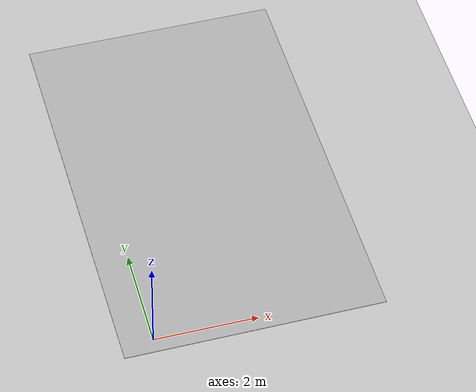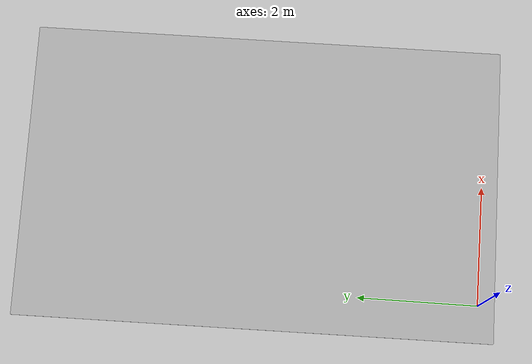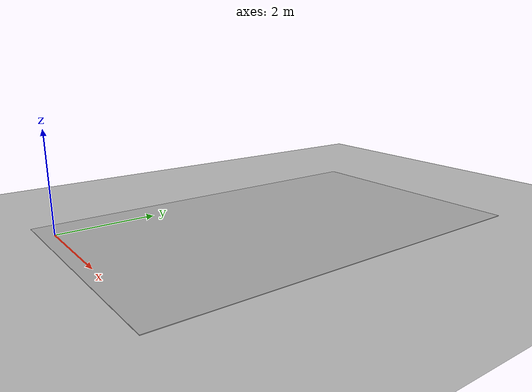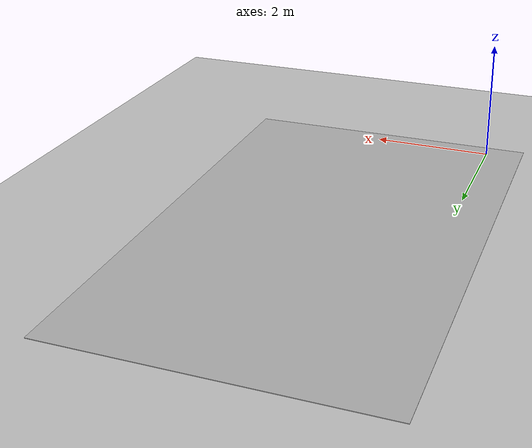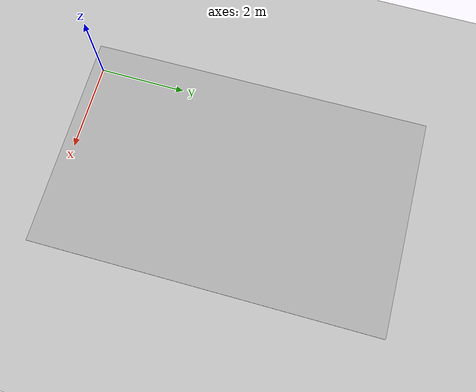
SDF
<sdf version="1.6">
 <world name="default">
  <model name="ground_plane">
   <static>1</static>
   <link name="link">
    <collision name="collision">
     <geometry><plane><normal>0 0 1</normal><size>100 100</size></plane></geometry>
     <surface>
      <contact><collide_bitmask>65535</collide_bitmask></contact>
      <friction><ode><mu>100</mu><mu2>50</mu2></ode></friction>
     </surface>
    </collision>
    <visual name="visual">
     <cast_shadows>0</cast_shadows>
     <geometry><plane><normal>0 0 1</normal><size>100 100</size></plane></geometry>
     <material>
      <script><uri>file://media/materials/scripts/gazebo.material</uri><name>Gazebo/Grey</name></script>
     </material>
    </visual>
   </link>
  </model>
  <gravity>0 0 -9.8</gravity>
  <magnetic_field>6e-06 2.3e-05 -4.2e-05</magnetic_field>
  <atmosphere type="adiabatic"/>
  <physics name="default_physics" default="0" type="ode">
   <max_step_size>0.001</max_step_size>
   <real_time_factor>1</real_time_factor>
   <real_time_update_rate>1000</real_time_update_rate>
  </physics>
  <scene><ambient>0.4 0.4 0.4 1</ambient><background>0.7 0.7 0.7 1</background><shadows>1</shadows></scene>
  <audio><device>default</device></audio>
  <spherical_coordinates>
   <surface_model>EARTH_WGS84</surface_model>
   <latitude_deg>0</latitude_deg>
   <longitude_deg>0</longitude_deg>
   <elevation>0</elevation>
   <heading_deg>0</heading_deg>
  </spherical_coordinates>
  <model name="aruco_map">
   <pose>1.85573 3.73645 0.001926 0 0 -1.56362</pose>
   <static>1</static>
   <link name="link">
    <visual name="visual"><geometry><mesh><uri>model://map/meshes/map.dae</uri></mesh></geometry></visual>
   </link>
  </model>
  <light name="user_point_light_0" type="point">
   <pose>1.25154 3.40382 1 0 -0 0</pose>
   <diffuse>1 1 1 1</diffuse>
   <specular>0.0901961 0.0901961 0.0901961 1</specular>
   <direction>0 0 -1</direction>
   <attenuation>
    <range>15</range>
    <constant>0.2</constant>
    <linear>0.01</linear>
    <quadratic>0.001</quadratic>
   </attenuation>
   <cast_shadows>0</cast_shadows>
   <direction>0 0 -1</direction>
  </light>
  <light name="user_directional_light_0" type="directional">
   <pose>0.38139 4.93156 1 0 -0 0</pose>
   <diffuse>0.5 0.5 0.5 1</diffuse>
   <specular>0.1 0.1 0.1 1</specular>
   <direction>0.1 0.1 -0.9</direction>
   <attenuation>
    <range>20</range>
    <constant>0.5</constant>
    <linear>0.01</linear>
    <quadratic>0.001</quadratic>
   </attenuation>
  </light>
  <light name="user_directional_light_1" type="directional">
   <pose>-2.51983 7.48431 1 0 -0 0</pose>
   <diffuse>0.5 0.5 0.5 1</diffuse>
   <specular>0.1 0.1 0.1 1</specular>
   <direction>0.1 0.1 -0.9</direction>
   <attenuation>
    <range>20</range>
    <constant>0.5</constant>
    <linear>0.01</linear>
    <quadratic>0.001</quadratic>
   </attenuation>
  </light>
  <light name="user_point_light_0_clone" type="point">
   <pose>2.29011 0.449297 4 0 -0 0</pose>
   <diffuse>1 1 1 1</diffuse>
   <specular>0.0901961 0.0901961 0.0901961 1</specular>
   <direction>0 0 -1</direction>
   <attenuation>
    <range>15</range>
    <constant>0.2</constant>
    <linear>0.01</linear>
    <quadratic>0.001</quadratic>
   </attenuation>
   <cast_shadows>0</cast_shadows>
  </light>
 </world>
</sdf>
